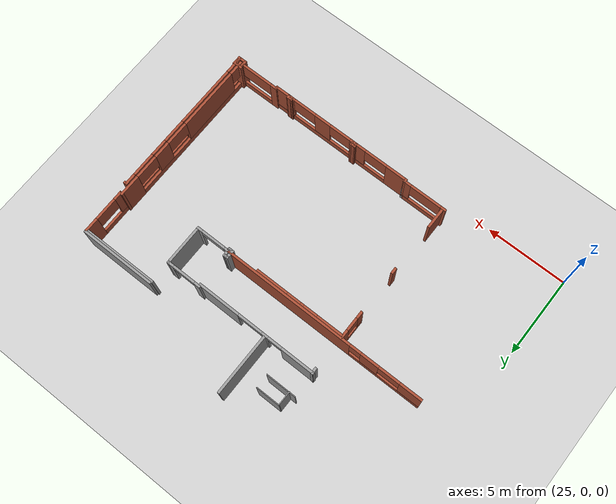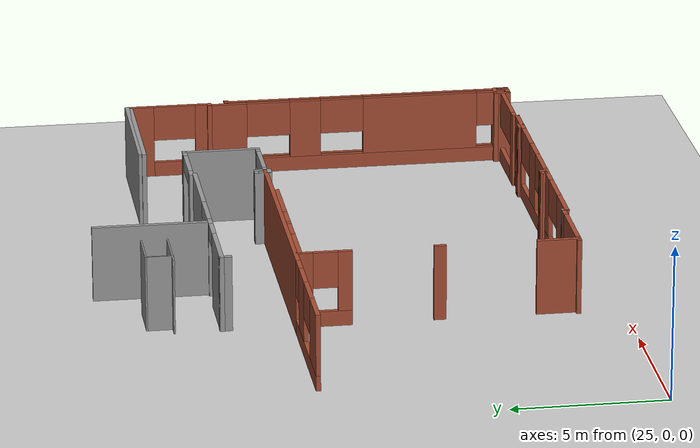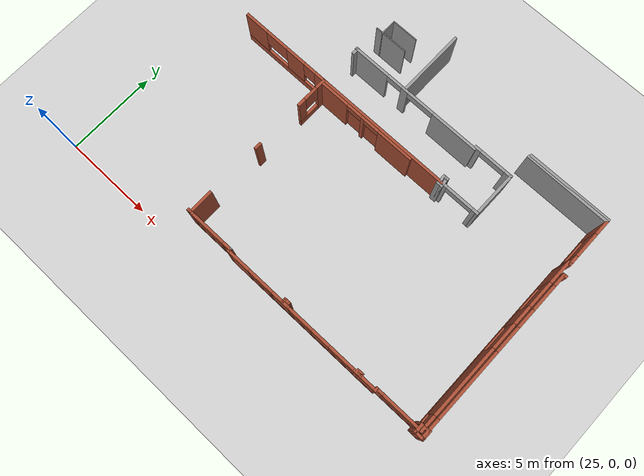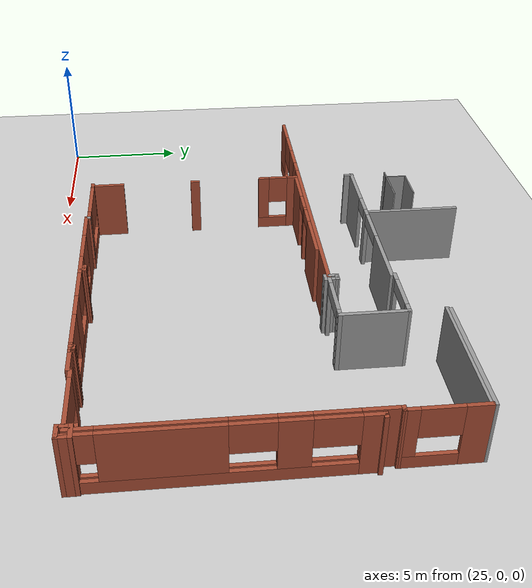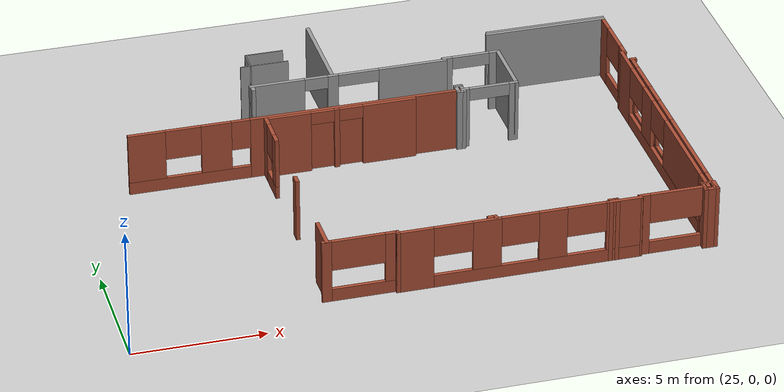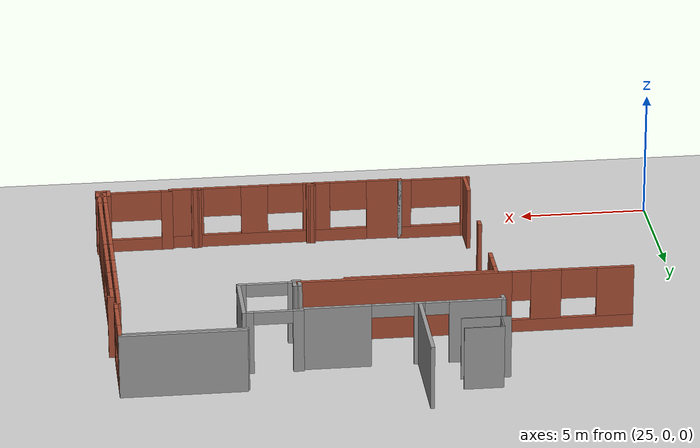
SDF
<sdf version="1.6">
 <world name="default">
  <model name="ground_plane">
   <static>1</static>
   <link name="link">
    <collision name="collision">
     <geometry><plane><normal>0 0 1</normal><size>100 100</size></plane></geometry>
     <surface><friction><ode><mu>100</mu><mu2>50</mu2></ode></friction></surface>
    </collision>
    <visual name="visual">
     <cast_shadows>0</cast_shadows>
     <geometry><plane><normal>0 0 1</normal><size>100 100</size></plane></geometry>
     <material>
      <script><uri>file://media/materials/scripts/gazebo.material</uri><name>Gazebo/Grey</name></script>
     </material>
    </visual>
   </link>
  </model>
  <model name="CVSSP">
   <pose>23.8714 24.094 0 0 -0 0</pose>
   <link name="Wall_115">
    <pose>12.4857 -11.244 0 0 -0 3.14117</pose>
    <visual name="Wall_115_Visual_0">
     <pose>-2.52803 0 1.25 0 -0 0</pose>
     <geometry><box><size>2.69541 0.15 2.5</size></box></geometry>
     <material>
      <script><uri>file://media/materials/scripts/gazebo.material</uri><name>Gazebo/Grey</name></script>
      <ambient>0.588235 0.588235 0.588235 1</ambient>
     </material>
    </visual>
    <collision name="Wall_115_Collision_0">
     <geometry><box><size>2.69541 0.15 2.5</size></box></geometry>
     <pose>-2.52803 0 1.25 0 -0 0</pose>
    </collision>
    <visual name="Wall_115_Visual_1">
     <pose>0.612242 0 1.25 0 -0 0</pose>
     <geometry><box><size>0.417444 0.15 2.5</size></box></geometry>
     <material>
      <script><uri>file://media/materials/scripts/gazebo.material</uri><name>Gazebo/Grey</name></script>
      <ambient>0.588235 0.588235 0.588235 1</ambient>
     </material>
    </visual>
    <collision name="Wall_115_Collision_1">
     <geometry><box><size>0.417444 0.15 2.5</size></box></geometry>
     <pose>0.612242 0 1.25 0 -0 0</pose>
    </collision>
    <visual name="Wall_115_Visual_2">
     <pose>2.79835 0 1.25 0 -0 0</pose>
     <geometry><box><size>2.15477 0.15 2.5</size></box></geometry>
     <material>
      <script><uri>file://media/materials/scripts/gazebo.material</uri><name>Gazebo/Grey</name></script>
      <ambient>0.588235 0.588235 0.588235 1</ambient>
     </material>
    </visual>
    <collision name="Wall_115_Collision_2">
     <geometry><box><size>2.15477 0.15 2.5</size></box></geometry>
     <pose>2.79835 0 1.25 0 -0 0</pose>
    </collision>
    <visual name="Wall_115_Visual_3">
     <pose>-0.388402 0 2.25 0 -0 0</pose>
     <geometry><box><size>1.58384 0.15 0.5</size></box></geometry>
     <material>
      <script><uri>file://media/materials/scripts/gazebo.material</uri><name>Gazebo/Grey</name></script>
      <ambient>0.588235 0.588235 0.588235 1</ambient>
     </material>
    </visual>
    <collision name="Wall_115_Collision_3">
     <geometry><box><size>1.58384 0.15 0.5</size></box></geometry>
     <pose>-0.388402 0 2.25 0 -0 0</pose>
    </collision>
    <visual name="Wall_115_Visual_4">
     <pose>1.27096 0 2.25 0 -0 0</pose>
     <geometry><box><size>0.9 0.15 0.5</size></box></geometry>
     <material>
      <script><uri>file://media/materials/scripts/gazebo.material</uri><name>Gazebo/Grey</name></script>
      <ambient>0.588235 0.588235 0.588235 1</ambient>
     </material>
    </visual>
    <collision name="Wall_115_Collision_4">
     <geometry><box><size>0.9 0.15 0.5</size></box></geometry>
     <pose>1.27096 0 2.25 0 -0 0</pose>
    </collision>
   </link>
   <link name="Wall_129">
    <collision name="Wall_129_Collision">
     <geometry><box><size>3.75 0.15 2.5</size></box></geometry>
     <pose>0 0 1.25 0 -0 0</pose>
    </collision>
    <visual name="Wall_129_Visual">
     <pose>0 0 1.25 0 -0 0</pose>
     <geometry><box><size>3.75 0.15 2.5</size></box></geometry>
     <material>
      <script><uri>file://media/materials/scripts/gazebo.material</uri><name>Gazebo/Grey</name></script>
      <ambient>1 1 1 1</ambient>
     </material>
    </visual>
    <pose>11.8522 -9.31531 0 0 0 -1.5708</pose>
   </link>
   <link name="Wall_133">
    <collision name="Wall_133_Collision">
     <geometry><box><size>4.75 0.15 2.5</size></box></geometry>
     <pose>0 0 1.25 0 -0 0</pose>
    </collision>
    <visual name="Wall_133_Visual">
     <pose>0 0 1.25 0 -0 0</pose>
     <geometry><box><size>4.75 0.15 2.5</size></box></geometry>
     <material>
      <script><uri>file://media/materials/scripts/gazebo.material</uri><name>Gazebo/Grey</name></script>
      <ambient>1 1 1 1</ambient>
     </material>
    </visual>
    <pose>20.7823 -9.67291 0 0 -0 0</pose>
   </link>
   <link name="Wall_15">
    <pose>17.354 -11.1314 0 0 0 -0.000796</pose>
    <visual name="Wall_15_Visual_0">
     <pose>-0.94801 0 1.25 0 -0 0</pose>
     <geometry><box><size>0.40353 0.15 2.5</size></box></geometry>
     <material>
      <script><uri>file://media/materials/scripts/gazebo.material</uri><name>Gazebo/Grey</name></script>
      <ambient>0.588235 0.588235 0.588235 1</ambient>
     </material>
    </visual>
    <collision name="Wall_15_Collision_0">
     <geometry><box><size>0.40353 0.15 2.5</size></box></geometry>
     <pose>-0.94801 0 1.25 0 -0 0</pose>
    </collision>
    <visual name="Wall_15_Visual_1">
     <pose>0.933339 0 1.25 0 -0 0</pose>
     <geometry><box><size>0.432873 0.15 2.5</size></box></geometry>
     <material>
      <script><uri>file://media/materials/scripts/gazebo.material</uri><name>Gazebo/Grey</name></script>
      <ambient>0.588235 0.588235 0.588235 1</ambient>
     </material>
    </visual>
    <collision name="Wall_15_Collision_1">
     <geometry><box><size>0.432873 0.15 2.5</size></box></geometry>
     <pose>0.933339 0 1.25 0 -0 0</pose>
    </collision>
    <visual name="Wall_15_Visual_2">
     <pose>-0.014671 0 2.25 0 -0 0</pose>
     <geometry><box><size>1.46315 0.15 0.5</size></box></geometry>
     <material>
      <script><uri>file://media/materials/scripts/gazebo.material</uri><name>Gazebo/Grey</name></script>
      <ambient>0.588235 0.588235 0.588235 1</ambient>
     </material>
    </visual>
    <collision name="Wall_15_Collision_2">
     <geometry><box><size>1.46315 0.15 0.5</size></box></geometry>
     <pose>-0.014671 0 2.25 0 -0 0</pose>
    </collision>
   </link>
   <link name="Wall_150">
    <collision name="Wall_150_Collision">
     <geometry><box><size>4.80423 0.15 2.5</size></box></geometry>
     <pose>0 0 1.25 0 -0 0</pose>
    </collision>
    <visual name="Wall_150_Visual">
     <pose>0 0 1.25 0 -0 0</pose>
     <geometry><box><size>4.80423 0.15 2.5</size></box></geometry>
     <material>
      <script><uri>file://media/materials/scripts/gazebo.material</uri><name>Gazebo/Grey</name></script>
      <ambient>0.588235 0.588235 0.588235 1</ambient>
     </material>
    </visual>
    <pose>20.7564 -9.78108 0 0 -0 0.001313</pose>
   </link>
   <link name="Wall_151">
    <pose>23.0856 -11.1326 0 0 0 -1.56927</pose>
    <visual name="Wall_151_Visual_0">
     <pose>-0.991338 0 1.25 0 -0 0</pose>
     <geometry><box><size>0.876406 0.15 2.5</size></box></geometry>
     <material>
      <script><uri>file://media/materials/scripts/gazebo.material</uri><name>Gazebo/Bricks</name></script>
      <ambient>1 1 1 1</ambient>
     </material>
    </visual>
    <collision name="Wall_151_Collision_0">
     <geometry><box><size>0.876406 0.15 2.5</size></box></geometry>
     <pose>-0.991338 0 1.25 0 -0 0</pose>
    </collision>
    <visual name="Wall_151_Visual_1">
     <pose>0.438203 0 0.25 0 -0 0</pose>
     <geometry><box><size>1.98267 0.15 0.5</size></box></geometry>
     <material>
      <script><uri>file://media/materials/scripts/gazebo.material</uri><name>Gazebo/Bricks</name></script>
      <ambient>1 1 1 1</ambient>
     </material>
    </visual>
    <collision name="Wall_151_Collision_1">
     <geometry><box><size>1.98267 0.15 0.5</size></box></geometry>
     <pose>0.438203 0 0.25 0 -0 0</pose>
    </collision>
    <visual name="Wall_151_Visual_2">
     <pose>1.14601 0 1.5 0 -0 0</pose>
     <geometry><box><size>0.567066 0.15 2</size></box></geometry>
     <material>
      <script><uri>file://media/materials/scripts/gazebo.material</uri><name>Gazebo/Bricks</name></script>
      <ambient>1 1 1 1</ambient>
     </material>
    </visual>
    <collision name="Wall_151_Collision_2">
     <geometry><box><size>0.567066 0.15 2</size></box></geometry>
     <pose>1.14601 0 1.5 0 -0 0</pose>
    </collision>
    <visual name="Wall_151_Visual_3">
     <pose>0.15467 0 1.9 0 -0 0</pose>
     <geometry><box><size>1.41561 0.15 1.2</size></box></geometry>
     <material>
      <script><uri>file://media/materials/scripts/gazebo.material</uri><name>Gazebo/Bricks</name></script>
      <ambient>1 1 1 1</ambient>
     </material>
    </visual>
    <collision name="Wall_151_Collision_3">
     <geometry><box><size>1.41561 0.15 1.2</size></box></geometry>
     <pose>0.15467 0 1.9 0 -0 0</pose>
    </collision>
   </link>
   <link name="Wall_152">
    <collision name="Wall_152_Collision">
     <geometry><box><size>0.258168 0.15 2.5</size></box></geometry>
     <pose>0 0 1.25 0 -0 0</pose>
    </collision>
    <visual name="Wall_152_Visual">
     <pose>0 0 1.25 0 -0 0</pose>
     <geometry><box><size>0.258168 0.15 2.5</size></box></geometry>
     <material>
      <script><uri>file://media/materials/scripts/gazebo.material</uri><name>Gazebo/Bricks</name></script>
      <ambient>1 1 1 1</ambient>
     </material>
    </visual>
    <pose>23.0336 -12.4904 0 0 -0 3.14159</pose>
   </link>
   <link name="Wall_153">
    <pose>22.9796 -17.562 0 0 0 -1.5708</pose>
    <visual name="Wall_153_Visual_0">
     <pose>-4.47045 0 1.25 0 -0 0</pose>
     <geometry><box><size>1.35898 0.15 2.5</size></box></geometry>
     <material>
      <script><uri>file://media/materials/scripts/gazebo.material</uri><name>Gazebo/Bricks</name></script>
      <ambient>1 1 1 1</ambient>
     </material>
    </visual>
    <collision name="Wall_153_Collision_0">
     <geometry><box><size>1.35898 0.15 2.5</size></box></geometry>
     <pose>-4.47045 0 1.25 0 -0 0</pose>
    </collision>
    <visual name="Wall_153_Visual_1">
     <pose>0.679489 0 0.25 0 -0 0</pose>
     <geometry><box><size>8.9409 0.15 0.5</size></box></geometry>
     <material>
      <script><uri>file://media/materials/scripts/gazebo.material</uri><name>Gazebo/Bricks</name></script>
      <ambient>1 1 1 1</ambient>
     </material>
    </visual>
    <collision name="Wall_153_Collision_1">
     <geometry><box><size>8.9409 0.15 0.5</size></box></geometry>
     <pose>0.679489 0 0.25 0 -0 0</pose>
    </collision>
    <visual name="Wall_153_Visual_2">
     <pose>-1.77367 0 1.5 0 -0 0</pose>
     <geometry><box><size>1.06672 0.15 2</size></box></geometry>
     <material>
      <script><uri>file://media/materials/scripts/gazebo.material</uri><name>Gazebo/Bricks</name></script>
      <ambient>1 1 1 1</ambient>
     </material>
    </visual>
    <collision name="Wall_153_Collision_2">
     <geometry><box><size>1.06672 0.15 2</size></box></geometry>
     <pose>-1.77367 0 1.5 0 -0 0</pose>
    </collision>
    <visual name="Wall_153_Visual_3">
     <pose>2.21324 0 1.5 0 -0 0</pose>
     <geometry><box><size>3.95063 0.15 2</size></box></geometry>
     <material>
      <script><uri>file://media/materials/scripts/gazebo.material</uri><name>Gazebo/Bricks</name></script>
      <ambient>1 1 1 1</ambient>
     </material>
    </visual>
    <collision name="Wall_153_Collision_3">
     <geometry><box><size>3.95063 0.15 2</size></box></geometry>
     <pose>2.21324 0 1.5 0 -0 0</pose>
    </collision>
    <visual name="Wall_153_Visual_4">
     <pose>4.97864 0 1.5 0 -0 0</pose>
     <geometry><box><size>0.342598 0.15 2</size></box></geometry>
     <material>
      <script><uri>file://media/materials/scripts/gazebo.material</uri><name>Gazebo/Bricks</name></script>
      <ambient>1 1 1 1</ambient>
     </material>
    </visual>
    <collision name="Wall_153_Collision_4">
     <geometry><box><size>0.342598 0.15 2</size></box></geometry>
     <pose>4.97864 0 1.5 0 -0 0</pose>
    </collision>
    <visual name="Wall_153_Visual_5">
     <pose>-3.04899 0 1.9 0 -0 0</pose>
     <geometry><box><size>1.48394 0.15 1.2</size></box></geometry>
     <material>
      <script><uri>file://media/materials/scripts/gazebo.material</uri><name>Gazebo/Bricks</name></script>
      <ambient>1 1 1 1</ambient>
     </material>
    </visual>
    <collision name="Wall_153_Collision_5">
     <geometry><box><size>1.48394 0.15 1.2</size></box></geometry>
     <pose>-3.04899 0 1.9 0 -0 0</pose>
    </collision>
    <visual name="Wall_153_Visual_6">
     <pose>-0.50119 0 1.9 0 -0 0</pose>
     <geometry><box><size>1.47823 0.15 1.2</size></box></geometry>
     <material>
      <script><uri>file://media/materials/scripts/gazebo.material</uri><name>Gazebo/Bricks</name></script>
      <ambient>1 1 1 1</ambient>
     </material>
    </visual>
    <collision name="Wall_153_Collision_6">
     <geometry><box><size>1.47823 0.15 1.2</size></box></geometry>
     <pose>-0.50119 0 1.9 0 -0 0</pose>
    </collision>
    <visual name="Wall_153_Visual_7">
     <pose>4.49795 0 1.9 0 -0 0</pose>
     <geometry><box><size>0.618781 0.15 1.2</size></box></geometry>
     <material>
      <script><uri>file://media/materials/scripts/gazebo.material</uri><name>Gazebo/Bricks</name></script>
      <ambient>1 1 1 1</ambient>
     </material>
    </visual>
    <collision name="Wall_153_Collision_7">
     <geometry><box><size>0.618781 0.15 1.2</size></box></geometry>
     <pose>4.49795 0 1.9 0 -0 0</pose>
    </collision>
   </link>
   <link name="Wall_157">
    <pose>23.1934 -17.9306 0 0 0 -1.5708</pose>
    <visual name="Wall_157_Visual_0">
     <pose>-4.53836 0 1.25 0 -0 0</pose>
     <geometry><box><size>0.746297 0.15 2.5</size></box></geometry>
     <material>
      <script><uri>file://media/materials/scripts/gazebo.material</uri><name>Gazebo/Bricks</name></script>
      <ambient>1 1 1 1</ambient>
     </material>
    </visual>
    <collision name="Wall_157_Collision_0">
     <geometry><box><size>0.746297 0.15 2.5</size></box></geometry>
     <pose>-4.53836 0 1.25 0 -0 0</pose>
    </collision>
    <visual name="Wall_157_Visual_1">
     <pose>0.373148 0 0.25 0 -0 0</pose>
     <geometry><box><size>9.07673 0.15 0.5</size></box></geometry>
     <material>
      <script><uri>file://media/materials/scripts/gazebo.material</uri><name>Gazebo/Bricks</name></script>
      <ambient>1 1 1 1</ambient>
     </material>
    </visual>
    <collision name="Wall_157_Collision_1">
     <geometry><box><size>9.07673 0.15 0.5</size></box></geometry>
     <pose>0.373148 0 0.25 0 -0 0</pose>
    </collision>
    <visual name="Wall_157_Visual_2">
     <pose>-2.13652 0 1.5 0 -0 0</pose>
     <geometry><box><size>1.06672 0.15 2</size></box></geometry>
     <material>
      <script><uri>file://media/materials/scripts/gazebo.material</uri><name>Gazebo/Bricks</name></script>
      <ambient>1 1 1 1</ambient>
     </material>
    </visual>
    <collision name="Wall_157_Collision_2">
     <geometry><box><size>1.06672 0.15 2</size></box></geometry>
     <pose>-2.13652 0 1.5 0 -0 0</pose>
    </collision>
    <visual name="Wall_157_Visual_3">
     <pose>1.84748 0 1.5 0 -0 0</pose>
     <geometry><box><size>3.94482 0.15 2</size></box></geometry>
     <material>
      <script><uri>file://media/materials/scripts/gazebo.material</uri><name>Gazebo/Bricks</name></script>
      <ambient>1 1 1 1</ambient>
     </material>
    </visual>
    <collision name="Wall_157_Collision_3">
     <geometry><box><size>3.94482 0.15 2</size></box></geometry>
     <pose>1.84748 0 1.5 0 -0 0</pose>
    </collision>
    <visual name="Wall_157_Visual_4">
     <pose>4.66639 0 1.5 0 -0 0</pose>
     <geometry><box><size>0.49024 0.15 2</size></box></geometry>
     <material>
      <script><uri>file://media/materials/scripts/gazebo.material</uri><name>Gazebo/Bricks</name></script>
      <ambient>1 1 1 1</ambient>
     </material>
    </visual>
    <collision name="Wall_157_Collision_4">
     <geometry><box><size>0.49024 0.15 2</size></box></geometry>
     <pose>4.66639 0 1.5 0 -0 0</pose>
    </collision>
    <visual name="Wall_157_Visual_5">
     <pose>-3.41755 0 1.9 0 -0 0</pose>
     <geometry><box><size>1.49533 0.15 1.2</size></box></geometry>
     <material>
      <script><uri>file://media/materials/scripts/gazebo.material</uri><name>Gazebo/Bricks</name></script>
      <ambient>1 1 1 1</ambient>
     </material>
    </visual>
    <collision name="Wall_157_Collision_5">
     <geometry><box><size>1.49533 0.15 1.2</size></box></geometry>
     <pose>-3.41755 0 1.9 0 -0 0</pose>
    </collision>
    <visual name="Wall_157_Visual_6">
     <pose>-0.864046 0 1.9 0 -0 0</pose>
     <geometry><box><size>1.47823 0.15 1.2</size></box></geometry>
     <material>
      <script><uri>file://media/materials/scripts/gazebo.material</uri><name>Gazebo/Bricks</name></script>
      <ambient>1 1 1 1</ambient>
     </material>
    </visual>
    <collision name="Wall_157_Collision_6">
     <geometry><box><size>1.47823 0.15 1.2</size></box></geometry>
     <pose>-0.864046 0 1.9 0 -0 0</pose>
    </collision>
    <visual name="Wall_157_Visual_7">
     <pose>4.12058 0 1.9 0 -0 0</pose>
     <geometry><box><size>0.601383 0.15 1.2</size></box></geometry>
     <material>
      <script><uri>file://media/materials/scripts/gazebo.material</uri><name>Gazebo/Bricks</name></script>
      <ambient>1 1 1 1</ambient>
     </material>
    </visual>
    <collision name="Wall_157_Collision_7">
     <geometry><box><size>0.601383 0.15 1.2</size></box></geometry>
     <pose>4.12058 0 1.9 0 -0 0</pose>
    </collision>
   </link>
   <link name="Wall_161">
    <collision name="Wall_161_Collision">
     <geometry><box><size>0.590287 0.15 2.5</size></box></geometry>
     <pose>0 0 1.25 0 -0 0</pose>
    </collision>
    <visual name="Wall_161_Visual">
     <pose>0 0 1.25 0 -0 0</pose>
     <geometry><box><size>0.590287 0.15 2.5</size></box></geometry>
     <material>
      <script><uri>file://media/materials/scripts/gazebo.material</uri><name>Gazebo/Bricks</name></script>
      <ambient>1 1 1 1</ambient>
     </material>
    </visual>
    <pose>23.0292 -22.4138 0 0 -0 0</pose>
   </link>
   <link name="Wall_162">
    <collision name="Wall_162_Collision">
     <geometry><box><size>0.573252 0.15 2.5</size></box></geometry>
     <pose>0 0 1.25 0 -0 0</pose>
    </collision>
    <visual name="Wall_162_Visual">
     <pose>0 0 1.25 0 -0 0</pose>
     <geometry><box><size>0.573252 0.15 2.5</size></box></geometry>
     <material>
      <script><uri>file://media/materials/scripts/gazebo.material</uri><name>Gazebo/Bricks</name></script>
      <ambient>1 1 1 1</ambient>
     </material>
    </visual>
    <pose>23.2493 -22.6253 0 0 0 -1.5708</pose>
   </link>
   <link name="Wall_163">
    <collision name="Wall_163_Collision">
     <geometry><box><size>0.584532 0.15 2.5</size></box></geometry>
     <pose>0 0 1.25 0 -0 0</pose>
    </collision>
    <visual name="Wall_163_Visual">
     <pose>0 0 1.25 0 -0 0</pose>
     <geometry><box><size>0.584532 0.15 2.5</size></box></geometry>
     <material>
      <script><uri>file://media/materials/scripts/gazebo.material</uri><name>Gazebo/Bricks</name></script>
      <ambient>1 1 1 1</ambient>
     </material>
    </visual>
    <pose>23.0321 -22.8369 0 0 -0 3.14159</pose>
   </link>
   <link name="Wall_164">
    <collision name="Wall_164_Collision">
     <geometry><box><size>0.567536 0.15 2.5</size></box></geometry>
     <pose>0 0 1.25 0 -0 0</pose>
    </collision>
    <visual name="Wall_164_Visual">
     <pose>0 0 1.25 0 -0 0</pose>
     <geometry><box><size>0.567536 0.15 2.5</size></box></geometry>
     <material>
      <script><uri>file://media/materials/scripts/gazebo.material</uri><name>Gazebo/Bricks</name></script>
      <ambient>1 1 1 1</ambient>
     </material>
    </visual>
    <pose>22.8148 -22.6282 0 0 -0 1.5708</pose>
   </link>
   <link name="Wall_174">
    <collision name="Wall_174_Collision">
     <geometry><box><size>2.59517 0.15 2.5</size></box></geometry>
     <pose>0 0 1.25 0 -0 0</pose>
    </collision>
    <visual name="Wall_174_Visual">
     <pose>0 0 1.25 0 -0 0</pose>
     <geometry><box><size>2.59517 0.15 2.5</size></box></geometry>
     <material>
      <script><uri>file://media/materials/scripts/gazebo.material</uri><name>Gazebo/Grey</name></script>
      <ambient>0.588235 0.588235 0.588235 1</ambient>
     </material>
    </visual>
    <pose>18.4291 -12.3547 0 0 0 -1.5705</pose>
   </link>
   <link name="Wall_175">
    <pose>17.3795 -13.5773 0 0 -0 3.14159</pose>
    <visual name="Wall_175_Visual_0">
     <pose>-0.944345 0 1.25 0 -0 0</pose>
     <geometry><box><size>0.36131 0.15 2.5</size></box></geometry>
     <material>
      <script><uri>file://media/materials/scripts/gazebo.material</uri><name>Gazebo/Grey</name></script>
      <ambient>0.588235 0.588235 0.588235 1</ambient>
     </material>
    </visual>
    <collision name="Wall_175_Collision_0">
     <geometry><box><size>0.36131 0.15 2.5</size></box></geometry>
     <pose>-0.944345 0 1.25 0 -0 0</pose>
    </collision>
    <visual name="Wall_175_Visual_1">
     <pose>0.960655 0 1.25 0 -0 0</pose>
     <geometry><box><size>0.32869 0.15 2.5</size></box></geometry>
     <material>
      <script><uri>file://media/materials/scripts/gazebo.material</uri><name>Gazebo/Grey</name></script>
      <ambient>0.588235 0.588235 0.588235 1</ambient>
     </material>
    </visual>
    <collision name="Wall_175_Collision_1">
     <geometry><box><size>0.32869 0.15 2.5</size></box></geometry>
     <pose>0.960655 0 1.25 0 -0 0</pose>
    </collision>
    <visual name="Wall_175_Visual_2">
     <pose>0.01631 0 2.25 0 -0 0</pose>
     <geometry><box><size>1.56 0.15 0.5</size></box></geometry>
     <material>
      <script><uri>file://media/materials/scripts/gazebo.material</uri><name>Gazebo/Grey</name></script>
      <ambient>0.588235 0.588235 0.588235 1</ambient>
     </material>
    </visual>
    <collision name="Wall_175_Collision_2">
     <geometry><box><size>1.56 0.15 0.5</size></box></geometry>
     <pose>0.01631 0 2.25 0 -0 0</pose>
    </collision>
   </link>
   <link name="Wall_176">
    <pose>9.90447 -13.5773 0 0 -0 3.14159</pose>
    <visual name="Wall_176_Visual_0">
     <pose>-2.33334 0 1.25 0 -0 0</pose>
     <geometry><box><size>8.33331 0.15 2.5</size></box></geometry>
     <material>
      <script><uri>file://media/materials/scripts/gazebo.material</uri><name>Gazebo/Bricks</name></script>
      <ambient>1 1 1 1</ambient>
     </material>
    </visual>
    <collision name="Wall_176_Collision_0">
     <geometry><box><size>8.33331 0.15 2.5</size></box></geometry>
     <pose>-2.33334 0 1.25 0 -0 0</pose>
    </collision>
    <visual name="Wall_176_Visual_1">
     <pose>4.16666 0 0.25 0 -0 0</pose>
     <geometry><box><size>4.66669 0.15 0.5</size></box></geometry>
     <material>
      <script><uri>file://media/materials/scripts/gazebo.material</uri><name>Gazebo/Bricks</name></script>
      <ambient>1 1 1 1</ambient>
     </material>
    </visual>
    <collision name="Wall_176_Collision_1">
     <geometry><box><size>4.66669 0.15 0.5</size></box></geometry>
     <pose>4.16666 0 0.25 0 -0 0</pose>
    </collision>
    <visual name="Wall_176_Visual_2">
     <pose>3.13486 0 1.5 0 -0 0</pose>
     <geometry><box><size>1.16219 0.15 2</size></box></geometry>
     <material>
      <script><uri>file://media/materials/scripts/gazebo.material</uri><name>Gazebo/Bricks</name></script>
      <ambient>1 1 1 1</ambient>
     </material>
    </visual>
    <collision name="Wall_176_Collision_2">
     <geometry><box><size>1.16219 0.15 2</size></box></geometry>
     <pose>3.13486 0 1.5 0 -0 0</pose>
    </collision>
    <visual name="Wall_176_Visual_3">
     <pose>5.7864 0 1.5 0 -0 0</pose>
     <geometry><box><size>1.42721 0.15 2</size></box></geometry>
     <material>
      <script><uri>file://media/materials/scripts/gazebo.material</uri><name>Gazebo/Bricks</name></script>
      <ambient>1 1 1 1</ambient>
     </material>
    </visual>
    <collision name="Wall_176_Collision_3">
     <geometry><box><size>1.42721 0.15 2</size></box></geometry>
     <pose>5.7864 0 1.5 0 -0 0</pose>
    </collision>
    <visual name="Wall_176_Visual_4">
     <pose>2.19354 0 1.9 0 -0 0</pose>
     <geometry><box><size>0.720452 0.15 1.2</size></box></geometry>
     <material>
      <script><uri>file://media/materials/scripts/gazebo.material</uri><name>Gazebo/Bricks</name></script>
      <ambient>1 1 1 1</ambient>
     </material>
    </visual>
    <collision name="Wall_176_Collision_4">
     <geometry><box><size>0.720452 0.15 1.2</size></box></geometry>
     <pose>2.19354 0 1.9 0 -0 0</pose>
    </collision>
    <visual name="Wall_176_Visual_5">
     <pose>4.39437 0 1.9 0 -0 0</pose>
     <geometry><box><size>1.35684 0.15 1.2</size></box></geometry>
     <material>
      <script><uri>file://media/materials/scripts/gazebo.material</uri><name>Gazebo/Bricks</name></script>
      <ambient>1 1 1 1</ambient>
     </material>
    </visual>
    <collision name="Wall_176_Collision_5">
     <geometry><box><size>1.35684 0.15 1.2</size></box></geometry>
     <pose>4.39437 0 1.9 0 -0 0</pose>
    </collision>
   </link>
   <link name="Wall_179">
    <pose>8.65751 -14.4573 0 0 0 -1.5708</pose>
    <visual name="Wall_179_Visual_0">
     <pose>-0.628809 0 1.25 0 -0 0</pose>
     <geometry><box><size>0.582411 0.15 2.5</size></box></geometry>
     <material>
      <script><uri>file://media/materials/scripts/gazebo.material</uri><name>Gazebo/Bricks</name></script>
      <ambient>1 1 1 1</ambient>
     </material>
    </visual>
    <collision name="Wall_179_Collision_0">
     <geometry><box><size>0.582411 0.15 2.5</size></box></geometry>
     <pose>-0.628809 0 1.25 0 -0 0</pose>
    </collision>
    <visual name="Wall_179_Visual_1">
     <pose>0.291205 0 0.25 0 -0 0</pose>
     <geometry><box><size>1.25762 0.15 0.5</size></box></geometry>
     <material>
      <script><uri>file://media/materials/scripts/gazebo.material</uri><name>Gazebo/Bricks</name></script>
      <ambient>1 1 1 1</ambient>
     </material>
    </visual>
    <collision name="Wall_179_Collision_1">
     <geometry><box><size>1.25762 0.15 0.5</size></box></geometry>
     <pose>0.291205 0 0.25 0 -0 0</pose>
    </collision>
    <visual name="Wall_179_Visual_2">
     <pose>0.691205 0 1.5 0 -0 0</pose>
     <geometry><box><size>0.457619 0.15 2</size></box></geometry>
     <material>
      <script><uri>file://media/materials/scripts/gazebo.material</uri><name>Gazebo/Bricks</name></script>
      <ambient>1 1 1 1</ambient>
     </material>
    </visual>
    <collision name="Wall_179_Collision_2">
     <geometry><box><size>0.457619 0.15 2</size></box></geometry>
     <pose>0.691205 0 1.5 0 -0 0</pose>
    </collision>
    <visual name="Wall_179_Visual_3">
     <pose>0.062396 0 1.9 0 -0 0</pose>
     <geometry><box><size>0.8 0.15 1.2</size></box></geometry>
     <material>
      <script><uri>file://media/materials/scripts/gazebo.material</uri><name>Gazebo/Bricks</name></script>
      <ambient>1 1 1 1</ambient>
     </material>
    </visual>
    <collision name="Wall_179_Collision_3">
     <geometry><box><size>0.8 0.15 1.2</size></box></geometry>
     <pose>0.062396 0 1.9 0 -0 0</pose>
    </collision>
   </link>
   <link name="Wall_183">
    <pose>9.90751 -22.6223 0 0 -0 0</pose>
    <visual name="Wall_183_Visual_0">
     <pose>-1.25422 0 1.25 0 -0 0</pose>
     <geometry><box><size>0.361568 0.15 2.5</size></box></geometry>
     <material>
      <script><uri>file://media/materials/scripts/gazebo.material</uri><name>Gazebo/Bricks</name></script>
      <ambient>1 1 1 1</ambient>
     </material>
    </visual>
    <collision name="Wall_183_Collision_0">
     <geometry><box><size>0.361568 0.15 2.5</size></box></geometry>
     <pose>-1.25422 0 1.25 0 -0 0</pose>
    </collision>
    <visual name="Wall_183_Visual_1">
     <pose>0.180784 0 0.25 0 -0 0</pose>
     <geometry><box><size>2.50843 0.15 0.5</size></box></geometry>
     <material>
      <script><uri>file://media/materials/scripts/gazebo.material</uri><name>Gazebo/Bricks</name></script>
      <ambient>1 1 1 1</ambient>
     </material>
    </visual>
    <collision name="Wall_183_Collision_1">
     <geometry><box><size>2.50843 0.15 0.5</size></box></geometry>
     <pose>0.180784 0 0.25 0 -0 0</pose>
    </collision>
    <visual name="Wall_183_Visual_2">
     <pose>1.17403 0 1.5 0 -0 0</pose>
     <geometry><box><size>0.521945 0.15 2</size></box></geometry>
     <material>
      <script><uri>file://media/materials/scripts/gazebo.material</uri><name>Gazebo/Bricks</name></script>
      <ambient>1 1 1 1</ambient>
     </material>
    </visual>
    <collision name="Wall_183_Collision_2">
     <geometry><box><size>0.521945 0.15 2</size></box></geometry>
     <pose>1.17403 0 1.5 0 -0 0</pose>
    </collision>
    <visual name="Wall_183_Visual_3">
     <pose>-0.080189 0 1.9 0 -0 0</pose>
     <geometry><box><size>1.98649 0.15 1.2</size></box></geometry>
     <material>
      <script><uri>file://media/materials/scripts/gazebo.material</uri><name>Gazebo/Bricks</name></script>
      <ambient>1 1 1 1</ambient>
     </material>
    </visual>
    <collision name="Wall_183_Collision_3">
     <geometry><box><size>1.98649 0.15 1.2</size></box></geometry>
     <pose>-0.080189 0 1.9 0 -0 0</pose>
    </collision>
   </link>
   <link name="Wall_184">
    <collision name="Wall_184_Collision">
     <geometry><box><size>0.15 0.15 2.5</size></box></geometry>
     <pose>0 0 1.25 0 -0 0</pose>
    </collision>
    <visual name="Wall_184_Visual">
     <pose>0 0 1.25 0 -0 0</pose>
     <geometry><box><size>0.15 0.15 2.5</size></box></geometry>
     <material>
      <script><uri>file://media/materials/scripts/gazebo.material</uri><name>Gazebo/Grey</name></script>
      <ambient>1 1 1 1</ambient>
     </material>
    </visual>
    <pose>11.2675 -22.6223 0 0 -0 0</pose>
   </link>
   <link name="Wall_186">
    <collision name="Wall_186_Collision">
     <geometry><box><size>0.25 0.15 2.5</size></box></geometry>
     <pose>0 0 1.25 0 -0 0</pose>
    </collision>
    <visual name="Wall_186_Visual">
     <pose>0 0 1.25 0 -0 0</pose>
     <geometry><box><size>0.25 0.15 2.5</size></box></geometry>
     <material>
      <script><uri>file://media/materials/scripts/gazebo.material</uri><name>Gazebo/Bricks</name></script>
      <ambient>1 1 1 1</ambient>
     </material>
    </visual>
    <pose>11.2675 -22.6723 0 0 0 -1.5708</pose>
   </link>
   <link name="Wall_187">
    <pose>15.8175 -22.7223 0 0 -0 0</pose>
    <visual name="Wall_187_Visual_0">
     <pose>-3.92561 0 1.25 0 -0 0</pose>
     <geometry><box><size>1.39878 0.15 2.5</size></box></geometry>
     <material>
      <script><uri>file://media/materials/scripts/gazebo.material</uri><name>Gazebo/Bricks</name></script>
      <ambient>1 1 1 1</ambient>
     </material>
    </visual>
    <collision name="Wall_187_Collision_0">
     <geometry><box><size>1.39878 0.15 2.5</size></box></geometry>
     <pose>-3.92561 0 1.25 0 -0 0</pose>
    </collision>
    <visual name="Wall_187_Visual_1">
     <pose>0.699388 0 0.25 0 -0 0</pose>
     <geometry><box><size>7.85123 0.15 0.5</size></box></geometry>
     <material>
      <script><uri>file://media/materials/scripts/gazebo.material</uri><name>Gazebo/Bricks</name></script>
      <ambient>1 1 1 1</ambient>
     </material>
    </visual>
    <collision name="Wall_187_Collision_1">
     <geometry><box><size>7.85123 0.15 0.5</size></box></geometry>
     <pose>0.699388 0 0.25 0 -0 0</pose>
    </collision>
    <visual name="Wall_187_Visual_2">
     <pose>-1.23106 0 1.5 0 -0 0</pose>
     <geometry><box><size>1.07201 0.15 2</size></box></geometry>
     <material>
      <script><uri>file://media/materials/scripts/gazebo.material</uri><name>Gazebo/Bricks</name></script>
      <ambient>1 1 1 1</ambient>
     </material>
    </visual>
    <collision name="Wall_187_Collision_2">
     <geometry><box><size>1.07201 0.15 2</size></box></geometry>
     <pose>-1.23106 0 1.5 0 -0 0</pose>
    </collision>
    <visual name="Wall_187_Visual_3">
     <pose>1.24079 0 1.5 0 -0 0</pose>
     <geometry><box><size>1.05883 0.15 2</size></box></geometry>
     <material>
      <script><uri>file://media/materials/scripts/gazebo.material</uri><name>Gazebo/Bricks</name></script>
      <ambient>1 1 1 1</ambient>
     </material>
    </visual>
    <collision name="Wall_187_Collision_3">
     <geometry><box><size>1.05883 0.15 2</size></box></geometry>
     <pose>1.24079 0 1.5 0 -0 0</pose>
    </collision>
    <visual name="Wall_187_Visual_4">
     <pose>3.94036 0 1.5 0 -0 0</pose>
     <geometry><box><size>1.36927 0.15 2</size></box></geometry>
     <material>
      <script><uri>file://media/materials/scripts/gazebo.material</uri><name>Gazebo/Bricks</name></script>
      <ambient>1 1 1 1</ambient>
     </material>
    </visual>
    <collision name="Wall_187_Collision_4">
     <geometry><box><size>1.36927 0.15 2</size></box></geometry>
     <pose>3.94036 0 1.5 0 -0 0</pose>
    </collision>
    <visual name="Wall_187_Visual_5">
     <pose>-2.49665 0 1.9 0 -0 0</pose>
     <geometry><box><size>1.45916 0.15 1.2</size></box></geometry>
     <material>
      <script><uri>file://media/materials/scripts/gazebo.material</uri><name>Gazebo/Bricks</name></script>
      <ambient>1 1 1 1</ambient>
     </material>
    </visual>
    <collision name="Wall_187_Collision_5">
     <geometry><box><size>1.45916 0.15 1.2</size></box></geometry>
     <pose>-2.49665 0 1.9 0 -0 0</pose>
    </collision>
    <visual name="Wall_187_Visual_6">
     <pose>0.008161 0 1.9 0 -0 0</pose>
     <geometry><box><size>1.40643 0.15 1.2</size></box></geometry>
     <material>
      <script><uri>file://media/materials/scripts/gazebo.material</uri><name>Gazebo/Bricks</name></script>
      <ambient>1 1 1 1</ambient>
     </material>
    </visual>
    <collision name="Wall_187_Collision_6">
     <geometry><box><size>1.40643 0.15 1.2</size></box></geometry>
     <pose>0.008161 0 1.9 0 -0 0</pose>
    </collision>
    <visual name="Wall_187_Visual_7">
     <pose>2.51297 0 1.9 0 -0 0</pose>
     <geometry><box><size>1.48553 0.15 1.2</size></box></geometry>
     <material>
      <script><uri>file://media/materials/scripts/gazebo.material</uri><name>Gazebo/Bricks</name></script>
      <ambient>1 1 1 1</ambient>
     </material>
    </visual>
    <collision name="Wall_187_Collision_7">
     <geometry><box><size>1.48553 0.15 1.2</size></box></geometry>
     <pose>2.51297 0 1.9 0 -0 0</pose>
    </collision>
   </link>
   <link name="Wall_188">
    <collision name="Wall_188_Collision">
     <geometry><box><size>0.233158 0.15 2.5</size></box></geometry>
     <pose>0 0 1.25 0 -0 0</pose>
    </collision>
    <visual name="Wall_188_Visual">
     <pose>0 0 1.25 0 -0 0</pose>
     <geometry><box><size>0.233158 0.15 2.5</size></box></geometry>
     <material>
      <script><uri>file://media/materials/scripts/gazebo.material</uri><name>Gazebo/Bricks</name></script>
      <ambient>1 1 1 1</ambient>
     </material>
    </visual>
    <pose>20.3718 -22.681 0 0 -0 1.46663</pose>
   </link>
   <link name="Wall_189">
    <pose>21.5512 -22.631 0 0 -0 0</pose>
    <visual name="Wall_189_Visual_0">
     <pose>-1.02474 0 1.25 0 -0 0</pose>
     <geometry><box><size>0.450521 0.15 2.5</size></box></geometry>
     <material>
      <script><uri>file://media/materials/scripts/gazebo.material</uri><name>Gazebo/Bricks</name></script>
      <ambient>1 1 1 1</ambient>
     </material>
    </visual>
    <collision name="Wall_189_Collision_0">
     <geometry><box><size>0.450521 0.15 2.5</size></box></geometry>
     <pose>-1.02474 0 1.25 0 -0 0</pose>
    </collision>
    <visual name="Wall_189_Visual_1">
     <pose>0.22526 0 0.25 0 -0 0</pose>
     <geometry><box><size>2.04948 0.15 0.5</size></box></geometry>
     <material>
      <script><uri>file://media/materials/scripts/gazebo.material</uri><name>Gazebo/Bricks</name></script>
      <ambient>1 1 1 1</ambient>
     </material>
    </visual>
    <collision name="Wall_189_Collision_1">
     <geometry><box><size>2.04948 0.15 0.5</size></box></geometry>
     <pose>0.22526 0 0.25 0 -0 0</pose>
    </collision>
    <visual name="Wall_189_Visual_2">
     <pose>1.2251 0 1.5 0 -0 0</pose>
     <geometry><box><size>0.04981 0.15 2</size></box></geometry>
     <material>
      <script><uri>file://media/materials/scripts/gazebo.material</uri><name>Gazebo/Bricks</name></script>
      <ambient>1 1 1 1</ambient>
     </material>
    </visual>
    <collision name="Wall_189_Collision_2">
     <geometry><box><size>0.04981 0.15 2</size></box></geometry>
     <pose>1.2251 0 1.5 0 -0 0</pose>
    </collision>
    <visual name="Wall_189_Visual_3">
     <pose>0.200356 0 1.9 0 -0 0</pose>
     <geometry><box><size>1.99967 0.15 1.2</size></box></geometry>
     <material>
      <script><uri>file://media/materials/scripts/gazebo.material</uri><name>Gazebo/Bricks</name></script>
      <ambient>1 1 1 1</ambient>
     </material>
    </visual>
    <collision name="Wall_189_Collision_3">
     <geometry><box><size>1.99967 0.15 1.2</size></box></geometry>
     <pose>0.200356 0 1.9 0 -0 0</pose>
    </collision>
   </link>
   <link name="Wall_192">
    <collision name="Wall_192_Collision">
     <geometry><box><size>1.40351 0.15 2.5</size></box></geometry>
     <pose>0 0 1.25 0 -0 0</pose>
    </collision>
    <visual name="Wall_192_Visual">
     <pose>0 0 1.25 0 -0 0</pose>
     <geometry><box><size>1.40351 0.15 2.5</size></box></geometry>
     <material>
      <script><uri>file://media/materials/scripts/gazebo.material</uri><name>Gazebo/Bricks</name></script>
      <ambient>1 1 1 1</ambient>
     </material>
    </visual>
    <pose>8.67238 -21.9795 0 0 0 -1.568</pose>
   </link>
   <link name="Wall_194">
    <collision name="Wall_194_Collision">
     <geometry><box><size>0.25 0.15 2.5</size></box></geometry>
     <pose>0 0 1.25 0 -0 0</pose>
    </collision>
    <visual name="Wall_194_Visual">
     <pose>0 0 1.25 0 -0 0</pose>
     <geometry><box><size>0.25 0.15 2.5</size></box></geometry>
     <material>
      <script><uri>file://media/materials/scripts/gazebo.material</uri><name>Gazebo/Bricks</name></script>
      <ambient>1 1 1 1</ambient>
     </material>
    </visual>
    <pose>14.7116 -22.6138 0 0 -0 1.5708</pose>
   </link>
   <link name="Wall_195">
    <collision name="Wall_195_Collision">
     <geometry><box><size>0.368528 0.15 2.5</size></box></geometry>
     <pose>0 0 1.25 0 -0 0</pose>
    </collision>
    <visual name="Wall_195_Visual">
     <pose>0 0 1.25 0 -0 0</pose>
     <geometry><box><size>0.368528 0.15 2.5</size></box></geometry>
     <material>
      <script><uri>file://media/materials/scripts/gazebo.material</uri><name>Gazebo/Bricks</name></script>
      <ambient>1 1 1 1</ambient>
     </material>
    </visual>
    <pose>14.8209 -22.562 0 0 -0 0.016017</pose>
   </link>
   <link name="Wall_196">
    <collision name="Wall_196_Collision">
     <geometry><box><size>0.25 0.15 2.5</size></box></geometry>
     <pose>0 0 1.25 0 -0 0</pose>
    </collision>
    <visual name="Wall_196_Visual">
     <pose>0 0 1.25 0 -0 0</pose>
     <geometry><box><size>0.25 0.15 2.5</size></box></geometry>
     <material>
      <script><uri>file://media/materials/scripts/gazebo.material</uri><name>Gazebo/Bricks</name></script>
      <ambient>1 1 1 1</ambient>
     </material>
    </visual>
    <pose>14.9301 -22.6103 0 0 0 -1.5708</pose>
   </link>
   <link name="Wall_198">
    <collision name="Wall_198_Collision">
     <geometry><box><size>0.264462 0.15 2.5</size></box></geometry>
     <pose>0 0 1.25 0 -0 0</pose>
    </collision>
    <visual name="Wall_198_Visual">
     <pose>0 0 1.25 0 -0 0</pose>
     <geometry><box><size>0.264462 0.15 2.5</size></box></geometry>
     <material>
      <script><uri>file://media/materials/scripts/gazebo.material</uri><name>Gazebo/Bricks</name></script>
      <ambient>1 1 1 1</ambient>
     </material>
    </visual>
    <pose>23.2376 -13.0908 0 0 -0 0</pose>
   </link>
   <link name="Wall_764">
    <collision name="Wall_764_Collision">
     <geometry><box><size>0.25 0.15 2.5</size></box></geometry>
     <pose>0 0 1.25 0 -0 0</pose>
    </collision>
    <visual name="Wall_764_Visual">
     <pose>0 0 1.25 0 -0 0</pose>
     <geometry><box><size>0.25 0.15 2.5</size></box></geometry>
     <material>
      <script><uri>file://media/materials/scripts/gazebo.material</uri><name>Gazebo/Bricks</name></script>
      <ambient>1 1 1 1</ambient>
     </material>
    </visual>
    <pose>19.2424 -22.6742 0 0 -0 1.5708</pose>
   </link>
   <link name="Wall_765">
    <collision name="Wall_765_Collision">
     <geometry><box><size>0.393343 0.15 2.5</size></box></geometry>
     <pose>0 0 1.25 0 -0 0</pose>
    </collision>
    <visual name="Wall_765_Visual">
     <pose>0 0 1.25 0 -0 0</pose>
     <geometry><box><size>0.393343 0.15 2.5</size></box></geometry>
     <material>
      <script><uri>file://media/materials/scripts/gazebo.material</uri><name>Gazebo/Bricks</name></script>
      <ambient>1 1 1 1</ambient>
     </material>
    </visual>
    <pose>19.364 -22.6247 0 0 0 -0.004698</pose>
   </link>
   <link name="Wall_766">
    <collision name="Wall_766_Collision">
     <geometry><box><size>0.25 0.15 2.5</size></box></geometry>
     <pose>0 0 1.25 0 -0 0</pose>
    </collision>
    <visual name="Wall_766_Visual">
     <pose>0 0 1.25 0 -0 0</pose>
     <geometry><box><size>0.25 0.15 2.5</size></box></geometry>
     <material>
      <script><uri>file://media/materials/scripts/gazebo.material</uri><name>Gazebo/Bricks</name></script>
      <ambient>1 1 1 1</ambient>
     </material>
    </visual>
    <pose>19.4857 -22.6753 0 0 0 -1.5708</pose>
   </link>
   <link name="Wall_769">
    <collision name="Wall_769_Collision">
     <geometry><box><size>0.397826 0.15 2.5</size></box></geometry>
     <pose>0 0 1.25 0 -0 0</pose>
    </collision>
    <visual name="Wall_769_Visual">
     <pose>0 0 1.25 0 -0 0</pose>
     <geometry><box><size>0.397826 0.15 2.5</size></box></geometry>
     <material>
      <script><uri>file://media/materials/scripts/gazebo.material</uri><name>Gazebo/Bricks</name></script>
      <ambient>1 1 1 1</ambient>
     </material>
    </visual>
    <pose>8.68163 -18.1781 0 0 0 -1.5708</pose>
   </link>
   <link name="Wall_772">
    <pose>11.5684 -13.7156 0 0 -0 3.14159</pose>
    <visual name="Wall_772_Visual_0">
     <pose>-1.83988 0 1.25 0 -0 0</pose>
     <geometry><box><size>2.07023 0.15 2.5</size></box></geometry>
     <material>
      <script><uri>file://media/materials/scripts/gazebo.material</uri><name>Gazebo/Bricks</name></script>
      <ambient>1 1 1 1</ambient>
     </material>
    </visual>
    <collision name="Wall_772_Collision_0">
     <geometry><box><size>2.07023 0.15 2.5</size></box></geometry>
     <pose>-1.83988 0 1.25 0 -0 0</pose>
    </collision>
    <visual name="Wall_772_Visual_1">
     <pose>0.195231 0 1.25 0 -0 0</pose>
     <geometry><box><size>0.2 0.15 2.5</size></box></geometry>
     <material>
      <script><uri>file://media/materials/scripts/gazebo.material</uri><name>Gazebo/Bricks</name></script>
      <ambient>1 1 1 1</ambient>
     </material>
    </visual>
    <collision name="Wall_772_Collision_1">
     <geometry><box><size>0.2 0.15 2.5</size></box></geometry>
     <pose>0.195231 0 1.25 0 -0 0</pose>
    </collision>
    <visual name="Wall_772_Visual_2">
     <pose>2.03512 0 1.25 0 -0 0</pose>
     <geometry><box><size>1.67977 0.15 2.5</size></box></geometry>
     <material>
      <script><uri>file://media/materials/scripts/gazebo.material</uri><name>Gazebo/Bricks</name></script>
      <ambient>1 1 1 1</ambient>
     </material>
    </visual>
    <collision name="Wall_772_Collision_2">
     <geometry><box><size>1.67977 0.15 2.5</size></box></geometry>
     <pose>2.03512 0 1.25 0 -0 0</pose>
    </collision>
    <visual name="Wall_772_Visual_3">
     <pose>-0.354769 0 2.25 0 -0 0</pose>
     <geometry><box><size>0.9 0.15 0.5</size></box></geometry>
     <material>
      <script><uri>file://media/materials/scripts/gazebo.material</uri><name>Gazebo/Bricks</name></script>
      <ambient>1 1 1 1</ambient>
     </material>
    </visual>
    <collision name="Wall_772_Collision_3">
     <geometry><box><size>0.9 0.15 0.5</size></box></geometry>
     <pose>-0.354769 0 2.25 0 -0 0</pose>
    </collision>
    <visual name="Wall_772_Visual_4">
     <pose>0.745232 0 2.25 0 -0 0</pose>
     <geometry><box><size>0.9 0.15 0.5</size></box></geometry>
     <material>
      <script><uri>file://media/materials/scripts/gazebo.material</uri><name>Gazebo/Bricks</name></script>
      <ambient>1 1 1 1</ambient>
     </material>
    </visual>
    <collision name="Wall_772_Collision_4">
     <geometry><box><size>0.9 0.15 0.5</size></box></geometry>
     <pose>0.745232 0 2.25 0 -0 0</pose>
    </collision>
   </link>
   <link name="Wall_774">
    <collision name="Wall_774_Collision">
     <geometry><box><size>0.452872 0.15 2.5</size></box></geometry>
     <pose>0 0 1.25 0 -0 0</pose>
    </collision>
    <visual name="Wall_774_Visual">
     <pose>0 0 1.25 0 -0 0</pose>
     <geometry><box><size>0.452872 0.15 2.5</size></box></geometry>
     <material>
      <script><uri>file://media/materials/scripts/gazebo.material</uri><name>Gazebo/Grey</name></script>
      <ambient>1 1 1 1</ambient>
     </material>
    </visual>
    <pose>16.3299 -13.4259 0 0 -0 1.56799</pose>
   </link>
   <link name="Wall_775">
    <collision name="Wall_775_Collision">
     <geometry><box><size>0.347714 0.15 2.5</size></box></geometry>
     <pose>0 0 1.25 0 -0 0</pose>
    </collision>
    <visual name="Wall_775_Visual">
     <pose>0 0 1.25 0 -0 0</pose>
     <geometry><box><size>0.347714 0.15 2.5</size></box></geometry>
     <material>
      <script><uri>file://media/materials/scripts/gazebo.material</uri><name>Gazebo/Grey</name></script>
      <ambient>1 1 1 1</ambient>
     </material>
    </visual>
    <pose>16.2315 -13.2745 0 0 -0 3.14159</pose>
   </link>
   <link name="Wall_776">
    <collision name="Wall_776_Collision">
     <geometry><box><size>0.575913 0.15 2.5</size></box></geometry>
     <pose>0 0 1.25 0 -0 0</pose>
    </collision>
    <visual name="Wall_776_Visual">
     <pose>0 0 1.25 0 -0 0</pose>
     <geometry><box><size>0.575913 0.15 2.5</size></box></geometry>
     <material>
      <script><uri>file://media/materials/scripts/gazebo.material</uri><name>Gazebo/Grey</name></script>
      <ambient>1 1 1 1</ambient>
     </material>
    </visual>
    <pose>16.1326 -13.4874 0 0 0 -1.5708</pose>
   </link>
   <link name="Wall_777">
    <collision name="Wall_777_Collision">
     <geometry><box><size>0.363058 0.15 2.5</size></box></geometry>
     <pose>0 0 1.25 0 -0 0</pose>
    </collision>
    <visual name="Wall_777_Visual">
     <pose>0 0 1.25 0 -0 0</pose>
     <geometry><box><size>0.363058 0.15 2.5</size></box></geometry>
     <material>
      <script><uri>file://media/materials/scripts/gazebo.material</uri><name>Gazebo/Grey</name></script>
      <ambient>1 1 1 1</ambient>
     </material>
    </visual>
    <pose>16.2391 -13.7004 0 0 -0 0</pose>
   </link>
   <link name="Wall_778">
    <collision name="Wall_778_Collision">
     <geometry><box><size>0.15 0.15 2.5</size></box></geometry>
     <pose>0 0 1.25 0 -0 0</pose>
    </collision>
    <visual name="Wall_778_Visual">
     <pose>0 0 1.25 0 -0 0</pose>
     <geometry><box><size>0.15 0.15 2.5</size></box></geometry>
     <material>
      <script><uri>file://media/materials/scripts/gazebo.material</uri><name>Gazebo/Grey</name></script>
      <ambient>1 1 1 1</ambient>
     </material>
    </visual>
    <pose>16.3455 -13.7004 0 0 -0 0</pose>
   </link>
   <link name="Wall_858">
    <collision name="Wall_858_Collision">
     <geometry><box><size>0.418183 0.15 2.5</size></box></geometry>
     <pose>0 0 1.25 0 -0 0</pose>
    </collision>
    <visual name="Wall_858_Visual">
     <pose>0 0 1.25 0 -0 0</pose>
     <geometry><box><size>0.418183 0.15 2.5</size></box></geometry>
     <material>
      <script><uri>file://media/materials/scripts/gazebo.material</uri><name>Gazebo/Grey</name></script>
      <ambient>1 1 1 1</ambient>
     </material>
    </visual>
    <pose>8.71931 -11.3618 0 0 0 -1.60304</pose>
   </link>
   <link name="Wall_868">
    <collision name="Wall_868_Collision">
     <geometry><box><size>1.88039 0.05 2.5</size></box></geometry>
     <pose>0 0 1.25 0 -0 0</pose>
    </collision>
    <visual name="Wall_868_Visual">
     <pose>0 0 1.25 0 -0 0</pose>
     <geometry><box><size>1.88039 0.05 2.5</size></box></geometry>
     <material>
      <script><uri>file://media/materials/scripts/gazebo.material</uri><name>Gazebo/Grey</name></script>
      <ambient>1 1 1 1</ambient>
     </material>
    </visual>
    <pose>9.57313 -9.72726 0 0 -0 0</pose>
   </link>
   <link name="Wall_871">
    <collision name="Wall_871_Collision">
     <geometry><box><size>1.5 0.05 2.5</size></box></geometry>
     <pose>0 0 1.25 0 -0 0</pose>
    </collision>
    <visual name="Wall_871_Visual">
     <pose>0 0 1.25 0 -0 0</pose>
     <geometry><box><size>1.5 0.05 2.5</size></box></geometry>
     <material>
      <script><uri>file://media/materials/scripts/gazebo.material</uri><name>Gazebo/Grey</name></script>
      <ambient>1 1 1 1</ambient>
     </material>
    </visual>
    <pose>9.75613 -8.89026 0 0 -0 0</pose>
   </link>
   <link name="Wall_873">
    <collision name="Wall_873_Collision">
     <geometry><box><size>0.899718 0.05 2.5</size></box></geometry>
     <pose>0 0 1.25 0 -0 0</pose>
    </collision>
    <visual name="Wall_873_Visual">
     <pose>0 0 1.25 0 -0 0</pose>
     <geometry><box><size>0.899718 0.05 2.5</size></box></geometry>
     <material>
      <script><uri>file://media/materials/scripts/gazebo.material</uri><name>Gazebo/Grey</name></script>
      <ambient>1 1 1 1</ambient>
     </material>
    </visual>
    <pose>9.03113 -9.31526 0 0 0 -1.5708</pose>
   </link>
   <static>1</static>
  </model>
 </world>
</sdf>
